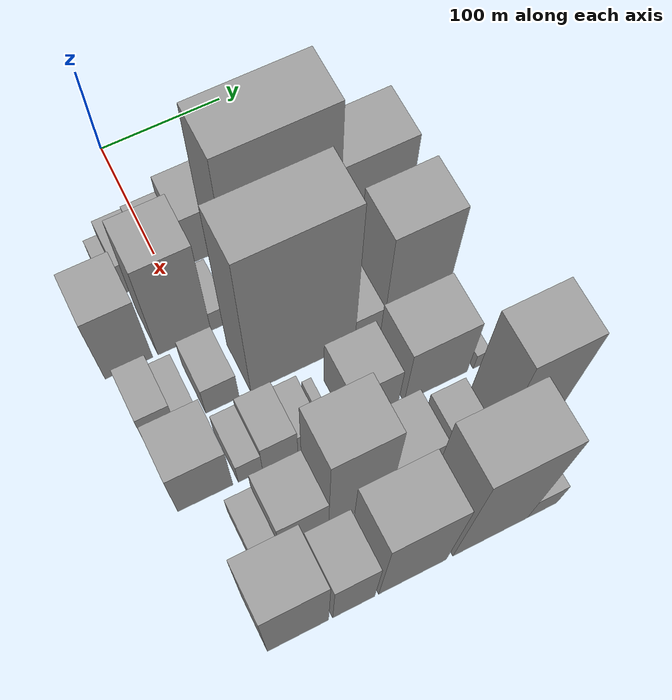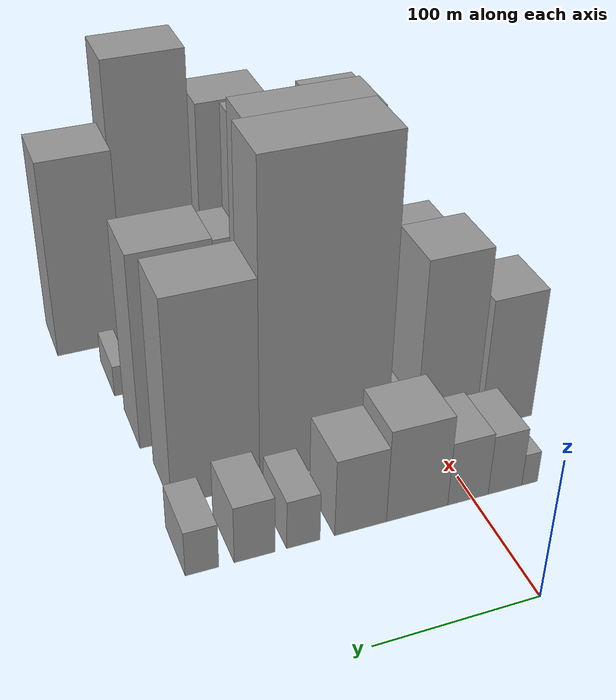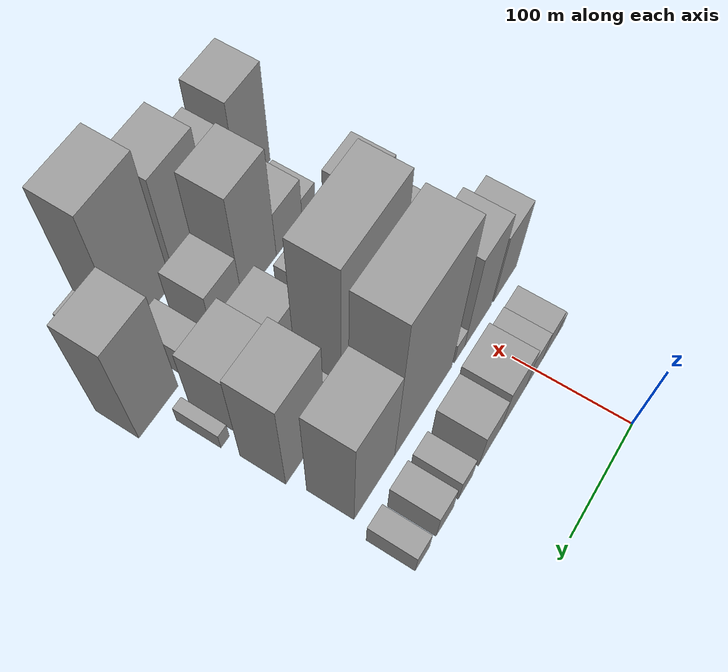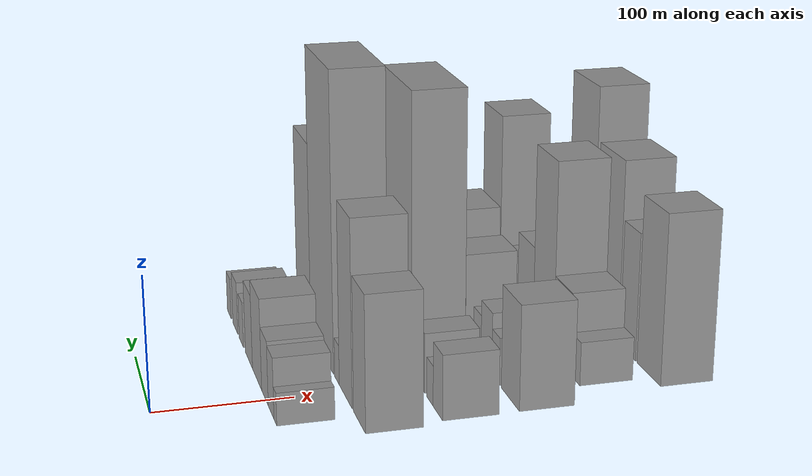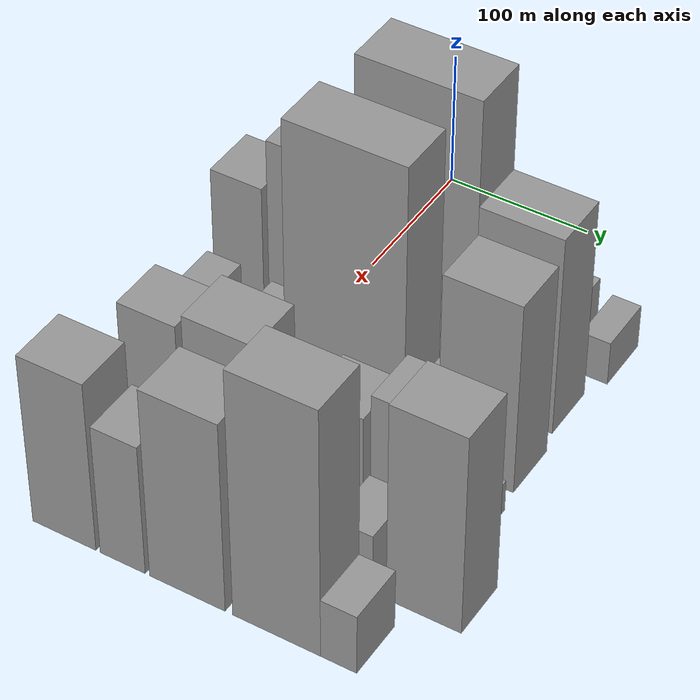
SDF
<sdf version="1.6">
 <world name="default">
  <model name="building_25">
   <static>1</static>
   <pose>100.0000 -37.8460 0 0.000000 0.000000 0.000000</pose>
   <link name="link">
    <pose>0 0 12.00 0 0 0</pose>
    <collision name="collision"><geometry><box><size>40.0000 10.6956 24.0000</size></box></geometry></collision>
    <visual name="visual">
     <cast_shadows>0</cast_shadows>
     <geometry><box><size>40.0000 10.6956 24.0000</size></box></geometry>
     <material>
      <script>
       <uri>model://grey_wall/materials/scripts</uri>
       <uri>model://grey_wall/materials/textures</uri>
       <name>vrc/grey_wall</name>
      </script>
     </material>
    </visual>
   </link>
  </model>
  <model name="building_26">
   <static>1</static>
   <pose>100.0000 -21.2353 0 0.000000 0.000000 0.000000</pose>
   <link name="link">
    <pose>0 0 22.50 0 0 0</pose>
    <collision name="collision"><geometry><box><size>40.0000 22.5257 45.0000</size></box></geometry></collision>
    <visual name="visual">
     <cast_shadows>0</cast_shadows>
     <geometry><box><size>40.0000 22.5257 45.0000</size></box></geometry>
     <material>
      <script>
       <uri>model://grey_wall/materials/scripts</uri>
       <uri>model://grey_wall/materials/textures</uri>
       <name>vrc/grey_wall</name>
      </script>
     </material>
    </visual>
   </link>
  </model>
  <model name="building_27">
   <static>1</static>
   <pose>100.0000 3.4044 0 0.000000 0.000000 0.000000</pose>
   <link name="link">
    <pose>0 0 24.00 0 0 0</pose>
    <collision name="collision"><geometry><box><size>40.0000 26.7537 48.0000</size></box></geometry></collision>
    <visual name="visual">
     <cast_shadows>0</cast_shadows>
     <geometry><box><size>40.0000 26.7537 48.0000</size></box></geometry>
     <material>
      <script>
       <uri>model://grey_wall/materials/scripts</uri>
       <uri>model://grey_wall/materials/textures</uri>
       <name>vrc/grey_wall</name>
      </script>
     </material>
    </visual>
   </link>
  </model>
  <model name="building_28">
   <static>1</static>
   <pose>100.0000 36.5227 0 0.000000 0.000000 0.000000</pose>
   <link name="link">
    <pose>0 0 34.50 0 0 0</pose>
    <collision name="collision"><geometry><box><size>40.0000 39.4829 69.0000</size></box></geometry></collision>
    <visual name="visual">
     <cast_shadows>0</cast_shadows>
     <geometry><box><size>40.0000 39.4829 69.0000</size></box></geometry>
     <material>
      <script>
       <uri>model://grey_wall/materials/scripts</uri>
       <uri>model://grey_wall/materials/textures</uri>
       <name>vrc/grey_wall</name>
      </script>
     </material>
    </visual>
   </link>
  </model>
  <model name="building_29">
   <static>1</static>
   <pose>100.0000 72.4692 0 0.000000 0.000000 0.000000</pose>
   <link name="link">
    <pose>0 0 28.50 0 0 0</pose>
    <collision name="collision"><geometry><box><size>40.0000 32.4100 57.0000</size></box></geometry></collision>
    <visual name="visual">
     <cast_shadows>0</cast_shadows>
     <geometry><box><size>40.0000 32.4100 57.0000</size></box></geometry>
     <material>
      <script>
       <uri>model://grey_wall/materials/scripts</uri>
       <uri>model://grey_wall/materials/textures</uri>
       <name>vrc/grey_wall</name>
      </script>
     </material>
    </visual>
   </link>
  </model>
  <model name="building_30">
   <static>1</static>
   <pose>100.0000 107.8525 0 0.000000 0.000000 0.000000</pose>
   <link name="link">
    <pose>0 0 18.00 0 0 0</pose>
    <collision name="collision"><geometry><box><size>40.0000 20.3566 36.0000</size></box></geometry></collision>
    <visual name="visual">
     <cast_shadows>0</cast_shadows>
     <geometry><box><size>40.0000 20.3566 36.0000</size></box></geometry>
     <material>
      <script>
       <uri>model://grey_wall/materials/scripts</uri>
       <uri>model://grey_wall/materials/textures</uri>
       <name>vrc/grey_wall</name>
      </script>
     </material>
    </visual>
   </link>
  </model>
  <model name="building_31">
   <static>1</static>
   <pose>100.0000 137.2129 0 0.000000 0.000000 0.000000</pose>
   <link name="link">
    <pose>0 0 21.00 0 0 0</pose>
    <collision name="collision"><geometry><box><size>40.0000 24.3643 42.0000</size></box></geometry></collision>
    <visual name="visual">
     <cast_shadows>0</cast_shadows>
     <geometry><box><size>40.0000 24.3643 42.0000</size></box></geometry>
     <material>
      <script>
       <uri>model://grey_wall/materials/scripts</uri>
       <uri>model://grey_wall/materials/textures</uri>
       <name>vrc/grey_wall</name>
      </script>
     </material>
    </visual>
   </link>
  </model>
  <model name="building_32">
   <static>1</static>
   <pose>100.0000 168.2064 0 0.000000 0.000000 0.000000</pose>
   <link name="link">
    <pose>0 0 16.50 0 0 0</pose>
    <collision name="collision"><geometry><box><size>40.0000 19.6229 33.0000</size></box></geometry></collision>
    <visual name="visual">
     <cast_shadows>0</cast_shadows>
     <geometry><box><size>40.0000 19.6229 33.0000</size></box></geometry>
     <material>
      <script>
       <uri>model://grey_wall/materials/scripts</uri>
       <uri>model://grey_wall/materials/textures</uri>
       <name>vrc/grey_wall</name>
      </script>
     </material>
    </visual>
   </link>
  </model>
  <model name="building_81">
   <static>1</static>
   <pose>155.0000 -51.6519 0 0.000000 0.000000 0.000000</pose>
   <link name="link">
    <pose>0 0 49.50 0 0 0</pose>
    <collision name="collision"><geometry><box><size>40.0000 36.8046 99.0000</size></box></geometry></collision>
    <visual name="visual">
     <cast_shadows>0</cast_shadows>
     <geometry><box><size>40.0000 36.8046 99.0000</size></box></geometry>
     <material>
      <script>
       <uri>model://grey_wall/materials/scripts</uri>
       <uri>model://grey_wall/materials/textures</uri>
       <name>vrc/grey_wall</name>
      </script>
     </material>
    </visual>
   </link>
  </model>
  <model name="building_82">
   <static>1</static>
   <pose>155.0000 -8.4640 0 0.000000 0.000000 0.000000</pose>
   <link name="link">
    <pose>0 0 69.00 0 0 0</pose>
    <collision name="collision"><geometry><box><size>40.0000 41.5712 138.0000</size></box></geometry></collision>
    <visual name="visual">
     <cast_shadows>0</cast_shadows>
     <geometry><box><size>40.0000 41.5712 138.0000</size></box></geometry>
     <material>
      <script>
       <uri>model://grey_wall/materials/scripts</uri>
       <uri>model://grey_wall/materials/textures</uri>
       <name>vrc/grey_wall</name>
      </script>
     </material>
    </visual>
   </link>
  </model>
  <model name="building_83">
   <static>1</static>
   <pose>155.0000 20.0709 0 0.000000 0.000000 0.000000</pose>
   <link name="link">
    <pose>0 0 15.00 0 0 0</pose>
    <collision name="collision"><geometry><box><size>40.0000 15.4985 30.0000</size></box></geometry></collision>
    <visual name="visual">
     <cast_shadows>0</cast_shadows>
     <geometry><box><size>40.0000 15.4985 30.0000</size></box></geometry>
     <material>
      <script>
       <uri>model://grey_wall/materials/scripts</uri>
       <uri>model://grey_wall/materials/textures</uri>
       <name>vrc/grey_wall</name>
      </script>
     </material>
    </visual>
   </link>
  </model>
  <model name="building_84">
   <static>1</static>
   <pose>155.0000 73.4142 0 0.000000 0.000000 0.000000</pose>
   <link name="link">
    <pose>0 0 112.50 0 0 0</pose>
    <collision name="collision"><geometry><box><size>40.0000 83.1882 225.0000</size></box></geometry></collision>
    <visual name="visual">
     <cast_shadows>0</cast_shadows>
     <geometry><box><size>40.0000 83.1882 225.0000</size></box></geometry>
     <material>
      <script>
       <uri>model://grey_wall/materials/scripts</uri>
       <uri>model://grey_wall/materials/textures</uri>
       <name>vrc/grey_wall</name>
      </script>
     </material>
    </visual>
   </link>
  </model>
  <model name="building_85">
   <static>1</static>
   <pose>155.0000 142.6392 0 0.000000 0.000000 0.000000</pose>
   <link name="link">
    <pose>0 0 75.00 0 0 0</pose>
    <collision name="collision"><geometry><box><size>40.0000 55.2619 150.0000</size></box></geometry></collision>
    <visual name="visual">
     <cast_shadows>0</cast_shadows>
     <geometry><box><size>40.0000 55.2619 150.0000</size></box></geometry>
     <material>
      <script>
       <uri>model://grey_wall/materials/scripts</uri>
       <uri>model://grey_wall/materials/textures</uri>
       <name>vrc/grey_wall</name>
      </script>
     </material>
    </visual>
   </link>
  </model>
  <model name="building_130">
   <static>1</static>
   <pose>210.0000 -51.6586 0 0.000000 0.000000 0.000000</pose>
   <link name="link">
    <pose>0 0 24.00 0 0 0</pose>
    <collision name="collision"><geometry><box><size>40.0000 24.3146 48.0000</size></box></geometry></collision>
    <visual name="visual">
     <cast_shadows>0</cast_shadows>
     <geometry><box><size>40.0000 24.3146 48.0000</size></box></geometry>
     <material>
      <script>
       <uri>model://grey_wall/materials/scripts</uri>
       <uri>model://grey_wall/materials/textures</uri>
       <name>vrc/grey_wall</name>
      </script>
     </material>
    </visual>
   </link>
  </model>
  <model name="building_131">
   <static>1</static>
   <pose>210.0000 -31.2239 0 0.000000 0.000000 0.000000</pose>
   <link name="link">
    <pose>0 0 15.00 0 0 0</pose>
    <collision name="collision"><geometry><box><size>40.0000 16.5548 30.0000</size></box></geometry></collision>
    <visual name="visual">
     <cast_shadows>0</cast_shadows>
     <geometry><box><size>40.0000 16.5548 30.0000</size></box></geometry>
     <material>
      <script>
       <uri>model://grey_wall/materials/scripts</uri>
       <uri>model://grey_wall/materials/textures</uri>
       <name>vrc/grey_wall</name>
      </script>
     </material>
    </visual>
   </link>
  </model>
  <model name="building_132">
   <static>1</static>
   <pose>210.0000 -3.9739 0 0.000000 0.000000 0.000000</pose>
   <link name="link">
    <pose>0 0 22.50 0 0 0</pose>
    <collision name="collision"><geometry><box><size>40.0000 25.9451 45.0000</size></box></geometry></collision>
    <visual name="visual">
     <cast_shadows>0</cast_shadows>
     <geometry><box><size>40.0000 25.9451 45.0000</size></box></geometry>
     <material>
      <script>
       <uri>model://grey_wall/materials/scripts</uri>
       <uri>model://grey_wall/materials/textures</uri>
       <name>vrc/grey_wall</name>
      </script>
     </material>
    </visual>
   </link>
  </model>
  <model name="building_133">
   <static>1</static>
   <pose>210.0000 59.1884 0 0.000000 0.000000 0.000000</pose>
   <link name="link">
    <pose>0 0 105.00 0 0 0</pose>
    <collision name="collision"><geometry><box><size>40.0000 82.3796 210.0000</size></box></geometry></collision>
    <visual name="visual">
     <cast_shadows>0</cast_shadows>
     <geometry><box><size>40.0000 82.3796 210.0000</size></box></geometry>
     <material>
      <script>
       <uri>model://grey_wall/materials/scripts</uri>
       <uri>model://grey_wall/materials/textures</uri>
       <name>vrc/grey_wall</name>
      </script>
     </material>
    </visual>
   </link>
  </model>
  <model name="building_134">
   <static>1</static>
   <pose>210.0000 111.8678 0 0.000000 0.000000 0.000000</pose>
   <link name="link">
    <pose>0 0 19.50 0 0 0</pose>
    <collision name="collision"><geometry><box><size>40.0000 22.9790 39.0000</size></box></geometry></collision>
    <visual name="visual">
     <cast_shadows>0</cast_shadows>
     <geometry><box><size>40.0000 22.9790 39.0000</size></box></geometry>
     <material>
      <script>
       <uri>model://grey_wall/materials/scripts</uri>
       <uri>model://grey_wall/materials/textures</uri>
       <name>vrc/grey_wall</name>
      </script>
     </material>
    </visual>
   </link>
  </model>
  <model name="building_135">
   <static>1</static>
   <pose>210.0000 149.0389 0 0.000000 0.000000 0.000000</pose>
   <link name="link">
    <pose>0 0 72.00 0 0 0</pose>
    <collision name="collision"><geometry><box><size>40.0000 51.3633 144.0000</size></box></geometry></collision>
    <visual name="visual">
     <cast_shadows>0</cast_shadows>
     <geometry><box><size>40.0000 51.3633 144.0000</size></box></geometry>
     <material>
      <script>
       <uri>model://grey_wall/materials/scripts</uri>
       <uri>model://grey_wall/materials/textures</uri>
       <name>vrc/grey_wall</name>
      </script>
     </material>
    </visual>
   </link>
  </model>
  <model name="building_179">
   <static>1</static>
   <pose>265.0000 -42.2687 0 0.000000 0.000000 0.000000</pose>
   <link name="link">
    <pose>0 0 39.00 0 0 0</pose>
    <collision name="collision"><geometry><box><size>40.0000 41.2803 78.0000</size></box></geometry></collision>
    <visual name="visual">
     <cast_shadows>0</cast_shadows>
     <geometry><box><size>40.0000 41.2803 78.0000</size></box></geometry>
     <material>
      <script>
       <uri>model://grey_wall/materials/scripts</uri>
       <uri>model://grey_wall/materials/textures</uri>
       <name>vrc/grey_wall</name>
      </script>
     </material>
    </visual>
   </link>
  </model>
  <model name="building_180">
   <static>1</static>
   <pose>265.0000 -8.4573 0 0.000000 0.000000 0.000000</pose>
   <link name="link">
    <pose>0 0 18.00 0 0 0</pose>
    <collision name="collision"><geometry><box><size>40.0000 18.3424 36.0000</size></box></geometry></collision>
    <visual name="visual">
     <cast_shadows>0</cast_shadows>
     <geometry><box><size>40.0000 18.3424 36.0000</size></box></geometry>
     <material>
      <script>
       <uri>model://grey_wall/materials/scripts</uri>
       <uri>model://grey_wall/materials/textures</uri>
       <name>vrc/grey_wall</name>
      </script>
     </material>
    </visual>
   </link>
  </model>
  <model name="building_181">
   <static>1</static>
   <pose>265.0000 14.2465 0 0.000000 0.000000 0.000000</pose>
   <link name="link">
    <pose>0 0 24.00 0 0 0</pose>
    <collision name="collision"><geometry><box><size>40.0000 27.0651 48.0000</size></box></geometry></collision>
    <visual name="visual">
     <cast_shadows>0</cast_shadows>
     <geometry><box><size>40.0000 27.0651 48.0000</size></box></geometry>
     <material>
      <script>
       <uri>model://grey_wall/materials/scripts</uri>
       <uri>model://grey_wall/materials/textures</uri>
       <name>vrc/grey_wall</name>
      </script>
     </material>
    </visual>
   </link>
  </model>
  <model name="building_182">
   <static>1</static>
   <pose>265.0000 37.1599 0 0.000000 0.000000 0.000000</pose>
   <link name="link">
    <pose>0 0 18.00 0 0 0</pose>
    <collision name="collision"><geometry><box><size>40.0000 18.7616 36.0000</size></box></geometry></collision>
    <visual name="visual">
     <cast_shadows>0</cast_shadows>
     <geometry><box><size>40.0000 18.7616 36.0000</size></box></geometry>
     <material>
      <script>
       <uri>model://grey_wall/materials/scripts</uri>
       <uri>model://grey_wall/materials/textures</uri>
       <name>vrc/grey_wall</name>
      </script>
     </material>
    </visual>
   </link>
  </model>
  <model name="building_183">
   <static>1</static>
   <pose>265.0000 54.2100 0 0.000000 0.000000 0.000000</pose>
   <link name="link">
    <pose>0 0 9.00 0 0 0</pose>
    <collision name="collision"><geometry><box><size>40.0000 7.3387 18.0000</size></box></geometry></collision>
    <visual name="visual">
     <cast_shadows>0</cast_shadows>
     <geometry><box><size>40.0000 7.3387 18.0000</size></box></geometry>
     <material>
      <script>
       <uri>model://grey_wall/materials/scripts</uri>
       <uri>model://grey_wall/materials/textures</uri>
       <name>vrc/grey_wall</name>
      </script>
     </material>
    </visual>
   </link>
  </model>
  <model name="building_184">
   <static>1</static>
   <pose>265.0000 86.8997 0 0.000000 0.000000 0.000000</pose>
   <link name="link">
    <pose>0 0 34.50 0 0 0</pose>
    <collision name="collision"><geometry><box><size>40.0000 38.0406 69.0000</size></box></geometry></collision>
    <visual name="visual">
     <cast_shadows>0</cast_shadows>
     <geometry><box><size>40.0000 38.0406 69.0000</size></box></geometry>
     <material>
      <script>
       <uri>model://grey_wall/materials/scripts</uri>
       <uri>model://grey_wall/materials/textures</uri>
       <name>vrc/grey_wall</name>
      </script>
     </material>
    </visual>
   </link>
  </model>
  <model name="building_185">
   <static>1</static>
   <pose>265.0000 136.2984 0 0.000000 0.000000 0.000000</pose>
   <link name="link">
    <pose>0 0 45.00 0 0 0</pose>
    <collision name="collision"><geometry><box><size>40.0000 50.7569 90.0000</size></box></geometry></collision>
    <visual name="visual">
     <cast_shadows>0</cast_shadows>
     <geometry><box><size>40.0000 50.7569 90.0000</size></box></geometry>
     <material>
      <script>
       <uri>model://grey_wall/materials/scripts</uri>
       <uri>model://grey_wall/materials/textures</uri>
       <name>vrc/grey_wall</name>
      </script>
     </material>
    </visual>
   </link>
  </model>
  <model name="building_186">
   <static>1</static>
   <pose>265.0000 172.0142 0 0.000000 0.000000 0.000000</pose>
   <link name="link">
    <pose>0 0 12.00 0 0 0</pose>
    <collision name="collision"><geometry><box><size>40.0000 10.6747 24.0000</size></box></geometry></collision>
    <visual name="visual">
     <cast_shadows>0</cast_shadows>
     <geometry><box><size>40.0000 10.6747 24.0000</size></box></geometry>
     <material>
      <script>
       <uri>model://grey_wall/materials/scripts</uri>
       <uri>model://grey_wall/materials/textures</uri>
       <name>vrc/grey_wall</name>
      </script>
     </material>
    </visual>
   </link>
  </model>
  <model name="building_231">
   <static>1</static>
   <pose>320.0000 -23.1779 0 0.000000 0.000000 0.000000</pose>
   <link name="link">
    <pose>0 0 16.50 0 0 0</pose>
    <collision name="collision"><geometry><box><size>40.0000 19.4424 33.0000</size></box></geometry></collision>
    <visual name="visual">
     <cast_shadows>0</cast_shadows>
     <geometry><box><size>40.0000 19.4424 33.0000</size></box></geometry>
     <material>
      <script>
       <uri>model://grey_wall/materials/scripts</uri>
       <uri>model://grey_wall/materials/textures</uri>
       <name>vrc/grey_wall</name>
      </script>
     </material>
    </visual>
   </link>
  </model>
  <model name="building_232">
   <static>1</static>
   <pose>320.0000 5.0546 0 0.000000 0.000000 0.000000</pose>
   <link name="link">
    <pose>0 0 31.50 0 0 0</pose>
    <collision name="collision"><geometry><box><size>40.0000 37.0225 63.0000</size></box></geometry></collision>
    <visual name="visual">
     <cast_shadows>0</cast_shadows>
     <geometry><box><size>40.0000 37.0225 63.0000</size></box></geometry>
     <material>
      <script>
       <uri>model://grey_wall/materials/scripts</uri>
       <uri>model://grey_wall/materials/textures</uri>
       <name>vrc/grey_wall</name>
      </script>
     </material>
    </visual>
   </link>
  </model>
  <model name="building_233">
   <static>1</static>
   <pose>320.0000 47.1760 0 0.000000 0.000000 0.000000</pose>
   <link name="link">
    <pose>0 0 75.00 0 0 0</pose>
    <collision name="collision"><geometry><box><size>40.0000 47.2204 150.0000</size></box></geometry></collision>
    <visual name="visual">
     <cast_shadows>0</cast_shadows>
     <geometry><box><size>40.0000 47.2204 150.0000</size></box></geometry>
     <material>
      <script>
       <uri>model://grey_wall/materials/scripts</uri>
       <uri>model://grey_wall/materials/textures</uri>
       <name>vrc/grey_wall</name>
      </script>
     </material>
    </visual>
   </link>
  </model>
  <model name="building_234">
   <static>1</static>
   <pose>320.0000 90.1578 0 0.000000 0.000000 0.000000</pose>
   <link name="link">
    <pose>0 0 34.50 0 0 0</pose>
    <collision name="collision"><geometry><box><size>40.0000 38.7432 69.0000</size></box></geometry></collision>
    <visual name="visual">
     <cast_shadows>0</cast_shadows>
     <geometry><box><size>40.0000 38.7432 69.0000</size></box></geometry>
     <material>
      <script>
       <uri>model://grey_wall/materials/scripts</uri>
       <uri>model://grey_wall/materials/textures</uri>
       <name>vrc/grey_wall</name>
      </script>
     </material>
    </visual>
   </link>
  </model>
  <model name="building_235">
   <static>1</static>
   <pose>320.0000 132.7796 0 0.000000 0.000000 0.000000</pose>
   <link name="link">
    <pose>0 0 22.50 0 0 0</pose>
    <collision name="collision"><geometry><box><size>40.0000 26.5004 45.0000</size></box></geometry></collision>
    <visual name="visual">
     <cast_shadows>0</cast_shadows>
     <geometry><box><size>40.0000 26.5004 45.0000</size></box></geometry>
     <material>
      <script>
       <uri>model://grey_wall/materials/scripts</uri>
       <uri>model://grey_wall/materials/textures</uri>
       <name>vrc/grey_wall</name>
      </script>
     </material>
    </visual>
   </link>
  </model>
  <model name="building_236">
   <static>1</static>
   <pose>320.0000 179.2547 0 0.000000 0.000000 0.000000</pose>
   <link name="link">
    <pose>0 0 75.00 0 0 0</pose>
    <collision name="collision"><geometry><box><size>40.0000 48.4498 150.0000</size></box></geometry></collision>
    <visual name="visual">
     <cast_shadows>0</cast_shadows>
     <geometry><box><size>40.0000 48.4498 150.0000</size></box></geometry>
     <material>
      <script>
       <uri>model://grey_wall/materials/scripts</uri>
       <uri>model://grey_wall/materials/textures</uri>
       <name>vrc/grey_wall</name>
      </script>
     </material>
    </visual>
   </link>
  </model>
  <model name="building_284">
   <static>1</static>
   <pose>375.0000 -26.4690 0 0.000000 0.000000 0.000000</pose>
   <link name="link">
    <pose>0 0 64.50 0 0 0</pose>
    <collision name="collision"><geometry><box><size>40.0000 44.3889 129.0000</size></box></geometry></collision>
    <visual name="visual">
     <cast_shadows>0</cast_shadows>
     <geometry><box><size>40.0000 44.3889 129.0000</size></box></geometry>
     <material>
      <script>
       <uri>model://grey_wall/materials/scripts</uri>
       <uri>model://grey_wall/materials/textures</uri>
       <name>vrc/grey_wall</name>
      </script>
     </material>
    </visual>
   </link>
  </model>
  <model name="building_285">
   <static>1</static>
   <pose>375.0000 14.2398 0 0.000000 0.000000 0.000000</pose>
   <link name="link">
    <pose>0 0 49.50 0 0 0</pose>
    <collision name="collision"><geometry><box><size>40.0000 31.0287 99.0000</size></box></geometry></collision>
    <visual name="visual">
     <cast_shadows>0</cast_shadows>
     <geometry><box><size>40.0000 31.0287 99.0000</size></box></geometry>
     <material>
      <script>
       <uri>model://grey_wall/materials/scripts</uri>
       <uri>model://grey_wall/materials/textures</uri>
       <name>vrc/grey_wall</name>
      </script>
     </material>
    </visual>
   </link>
  </model>
  <model name="building_286">
   <static>1</static>
   <pose>375.0000 58.2660 0 0.000000 0.000000 0.000000</pose>
   <link name="link">
    <pose>0 0 72.00 0 0 0</pose>
    <collision name="collision"><geometry><box><size>40.0000 51.0237 144.0000</size></box></geometry></collision>
    <visual name="visual">
     <cast_shadows>0</cast_shadows>
     <geometry><box><size>40.0000 51.0237 144.0000</size></box></geometry>
     <material>
      <script>
       <uri>model://grey_wall/materials/scripts</uri>
       <uri>model://grey_wall/materials/textures</uri>
       <name>vrc/grey_wall</name>
      </script>
     </material>
    </visual>
   </link>
  </model>
  <model name="building_287">
   <static>1</static>
   <pose>375.0000 117.5717 0 0.000000 0.000000 0.000000</pose>
   <link name="link">
    <pose>0 0 93.00 0 0 0</pose>
    <collision name="collision"><geometry><box><size>40.0000 57.5877 186.0000</size></box></geometry></collision>
    <visual name="visual">
     <cast_shadows>0</cast_shadows>
     <geometry><box><size>40.0000 57.5877 186.0000</size></box></geometry>
     <material>
      <script>
       <uri>model://grey_wall/materials/scripts</uri>
       <uri>model://grey_wall/materials/textures</uri>
       <name>vrc/grey_wall</name>
      </script>
     </material>
    </visual>
   </link>
  </model>
  <model name="building_288">
   <static>1</static>
   <pose>375.0000 158.0004 0 0.000000 0.000000 0.000000</pose>
   <link name="link">
    <pose>0 0 22.50 0 0 0</pose>
    <collision name="collision"><geometry><box><size>40.0000 23.2697 45.0000</size></box></geometry></collision>
    <visual name="visual">
     <cast_shadows>0</cast_shadows>
     <geometry><box><size>40.0000 23.2697 45.0000</size></box></geometry>
     <material>
      <script>
       <uri>model://grey_wall/materials/scripts</uri>
       <uri>model://grey_wall/materials/textures</uri>
       <name>vrc/grey_wall</name>
      </script>
     </material>
    </visual>
   </link>
  </model>
 </world>
</sdf>
